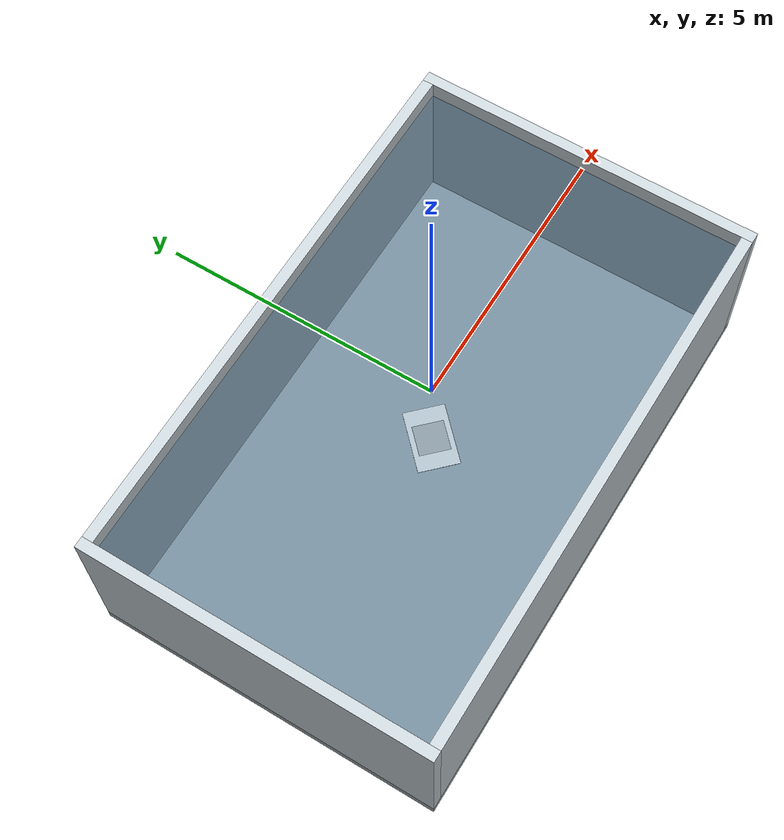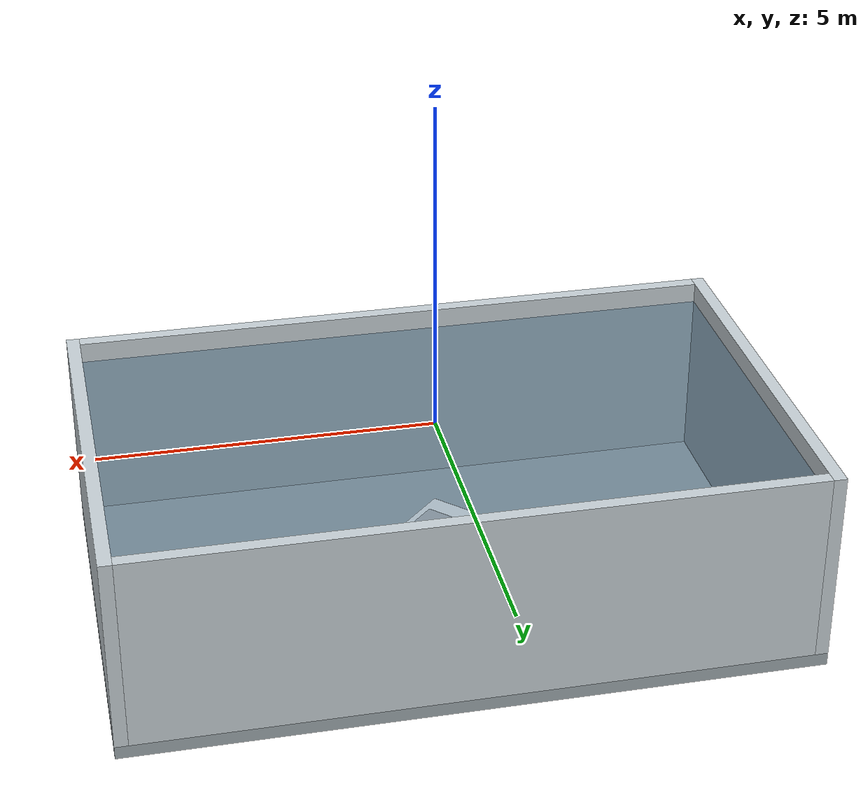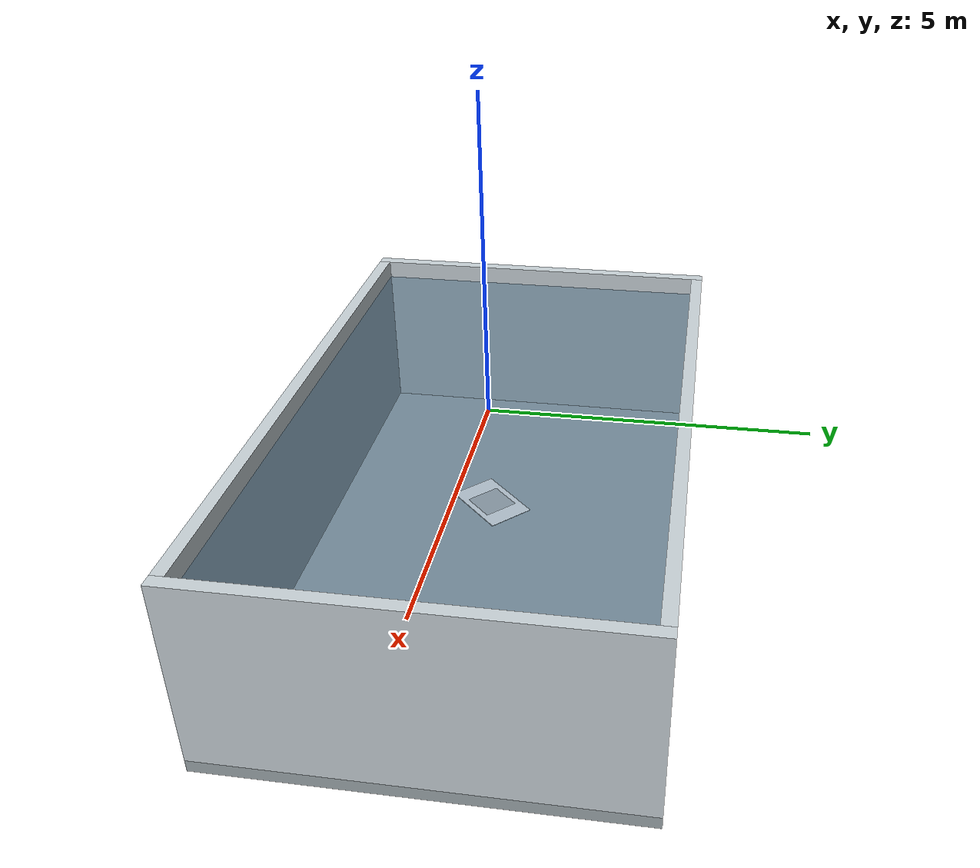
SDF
<sdf version="1.6">
 <world name="pool_sweep">
  <physics name="1ms" type="ignored">
   <max_step_size>0.001</max_step_size>
   <real_time_factor>1.0</real_time_factor>
  </physics>
  <plugin filename="gz-sim-physics-system" name="gz::sim::systems::Physics"/>
  <plugin filename="gz-sim-sensors-system" name="gz::sim::systems::Sensors">
   <render_engine>ogre2</render_engine>
  </plugin>
  <plugin filename="gz-sim-scene-broadcaster-system" name="gz::sim::systems::SceneBroadcaster"/>
  <plugin filename="gz-sim-user-commands-system" name="gz::sim::systems::UserCommands"/>
  <plugin filename="gz-sim-imu-system" name="gz::sim::systems::Imu"/>
  <plugin filename="gz-sim-buoyancy-system" name="gz::sim::systems::Buoyancy">
   <graded_buoyancy>
    <default_density>1000</default_density>
    <density_change><above_depth>0</above_depth><density>1.225</density></density_change>
   </graded_buoyancy>
   <enable>bluerov2_heavy</enable>
  </plugin>
  <scene><ambient>0.65 0.68 0.72 1</ambient><background>0.08 0.16 0.24 1</background><grid>false</grid></scene>
  <light type="directional" name="sun">
   <pose>0 0 10 0 0 0</pose>
   <diffuse>0.9 0.9 0.9 1</diffuse>
   <specular>0.4 0.4 0.4 1</specular>
   <direction>-0.3 0.2 -0.93</direction>
  </light>
  <model name="pool">
   <static>true</static>
   <link name="link">
    <collision name="floor">
     <pose>0 0 -2.8 0 0 0</pose>
     <geometry><box><size>10.4 6.4 0.2</size></box></geometry>
    </collision>
    <visual name="floor">
     <pose>0 0 -2.8 0 0 0</pose>
     <geometry><box><size>10.4 6.4 0.2</size></box></geometry>
     <material><ambient>0.55 0.58 0.60 1</ambient><diffuse>0.62 0.66 0.68 1</diffuse></material>
    </visual>
    <collision name="wall_xp">
     <pose>5.1 0 -1.2 0 0 0</pose>
     <geometry><box><size>0.2 6.4 3.0</size></box></geometry>
    </collision>
    <visual name="wall_xp">
     <pose>5.1 0 -1.2 0 0 0</pose>
     <geometry><box><size>0.2 6.4 3.0</size></box></geometry>
     <material><ambient>0.70 0.74 0.76 1</ambient><diffuse>0.78 0.82 0.84 1</diffuse></material>
    </visual>
    <collision name="wall_xn">
     <pose>-5.1 0 -1.2 0 0 0</pose>
     <geometry><box><size>0.2 6.4 3.0</size></box></geometry>
    </collision>
    <visual name="wall_xn">
     <pose>-5.1 0 -1.2 0 0 0</pose>
     <geometry><box><size>0.2 6.4 3.0</size></box></geometry>
     <material><ambient>0.70 0.74 0.76 1</ambient><diffuse>0.78 0.82 0.84 1</diffuse></material>
    </visual>
    <collision name="wall_yp">
     <pose>0 3.1 -1.2 0 0 0</pose>
     <geometry><box><size>10.0 0.2 3.0</size></box></geometry>
    </collision>
    <visual name="wall_yp">
     <pose>0 3.1 -1.2 0 0 0</pose>
     <geometry><box><size>10.0 0.2 3.0</size></box></geometry>
     <material><ambient>0.70 0.74 0.76 1</ambient><diffuse>0.78 0.82 0.84 1</diffuse></material>
    </visual>
    <collision name="wall_yn">
     <pose>0 -3.1 -1.2 0 0 0</pose>
     <geometry><box><size>10.0 0.2 3.0</size></box></geometry>
    </collision>
    <visual name="wall_yn">
     <pose>0 -3.1 -1.2 0 0 0</pose>
     <geometry><box><size>10.0 0.2 3.0</size></box></geometry>
     <material><ambient>0.70 0.74 0.76 1</ambient><diffuse>0.78 0.82 0.84 1</diffuse></material>
    </visual>
   </link>
  </model>
  <model name="water_surface">
   <static>true</static>
   <link name="link">
    <visual name="visual">
     <geometry><plane><normal>0 0 1</normal><size>10 6</size></plane></geometry>
     <material><ambient>0.10 0.30 0.45 0.5</ambient><diffuse>0.10 0.30 0.45 0.5</diffuse></material>
     <transparency>0.5</transparency>
    </visual>
   </link>
  </model>
  <include>
   <name>apriltag_16h5_id2</name>
   <pose degrees="true">0 0 -1.767 0 0 45</pose>
   <uri>model://apriltag_16h5_id2</uri>
  </include>
  <include><name>nbv_probe_camera</name><pose>0 0 5 0 0 0</pose><uri>model://nbv_probe_camera</uri></include>
 </world>
</sdf>

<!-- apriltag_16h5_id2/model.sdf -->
<sdf version="1.9">
  <model name="apriltag_16h5_id2">
    <static>true</static>
    <link name="link">
      <visual name="plate">
        <pose>0 0 0.004 0 0 0</pose>
        <geometry><box><size>1.15 0.75 0.008</size></box></geometry>
        <material>
          <ambient>0.90 0.90 0.90 1</ambient>
          <diffuse>0.95 0.95 0.95 1</diffuse>
          <specular>0.05 0.05 0.05 1</specular>
        </material>
      </visual>
      <!-- 태그: quiet zone 포함 0.560 m 평면. 검은 테두리 한 변 0.420 m.
           UV 를 직접 쓴 메쉬라 렌더러의 box UV 규약에 의존하지 않는다
           (거울상이면 검출 자체가 실패하므로). -->
      <visual name="tag">
        <pose>0 0 0.0085 0 0 0</pose>
        <geometry>
          <mesh><uri>model://apriltag_16h5_id2/meshes/apriltag_16h5_id2.obj</uri></mesh>
        </geometry>
      </visual>
      <collision name="plate">
        <pose>0 0 0.004 0 0 0</pose>
        <geometry><box><size>1.15 0.75 0.008</size></box></geometry>
      </collision>
    </link>
  </model>
</sdf>

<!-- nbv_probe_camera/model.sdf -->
<sdf version="1.9">
  <!-- 시점 스윕용 정적 프로브 카메라. ROV 의 nbv_camera 와 동일한 rgbd_camera 설정.
       모델 원점 = 카메라 광학 중심이므로 set_pose 로 옮긴 pose 가 곧 카메라 pose 다.
       gz 센서 프레임: +X 전방 / +Y 좌 / +Z 상 (ROV 카메라와 같은 규약). -->
  <model name="nbv_probe_camera">
    <static>true</static>
    <link name="link">
      <sensor name="probe" type="rgbd_camera">
        <camera>
          <horizontal_fov>1.204447</horizontal_fov>
          <image><width>640</width><height>480</height><format>R8G8B8</format></image>
          <clip><near>0.05</near><far>20.0</far></clip>
        </camera>
        <always_on>1</always_on>
        <update_rate>30</update_rate>
        <topic>nbv/probe</topic>
      </sensor>
    </link>
  </model>
</sdf>
